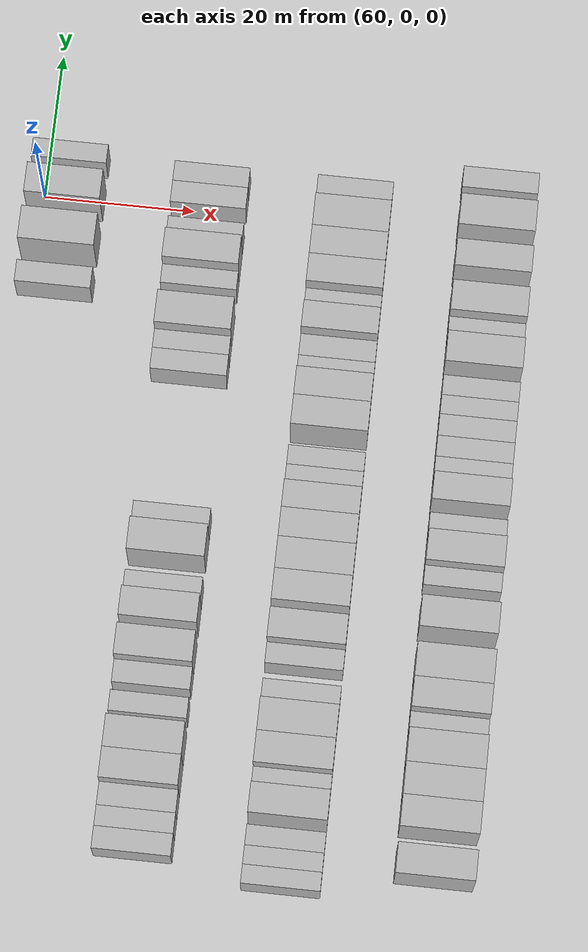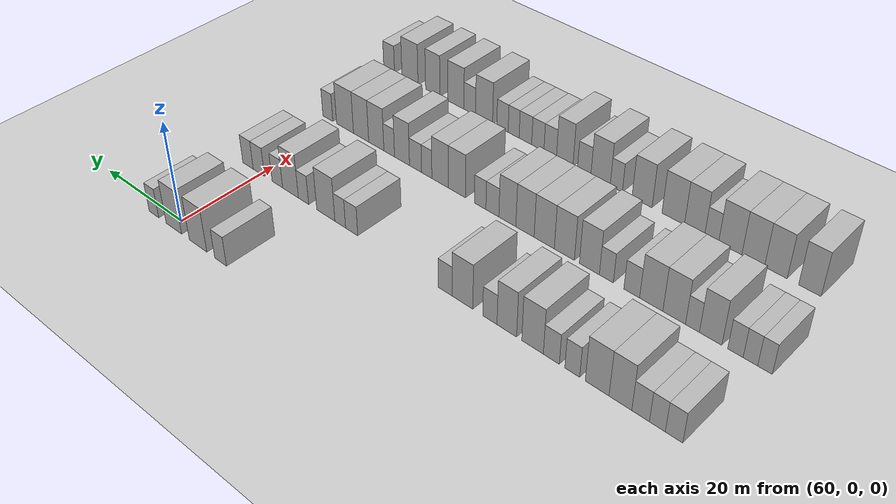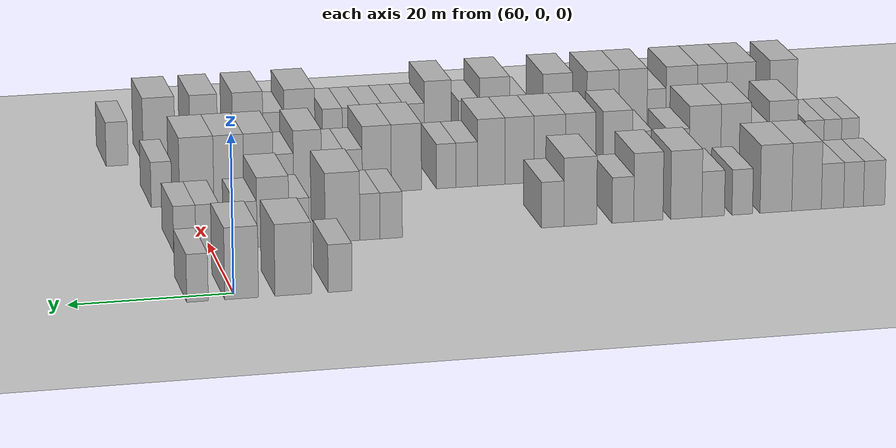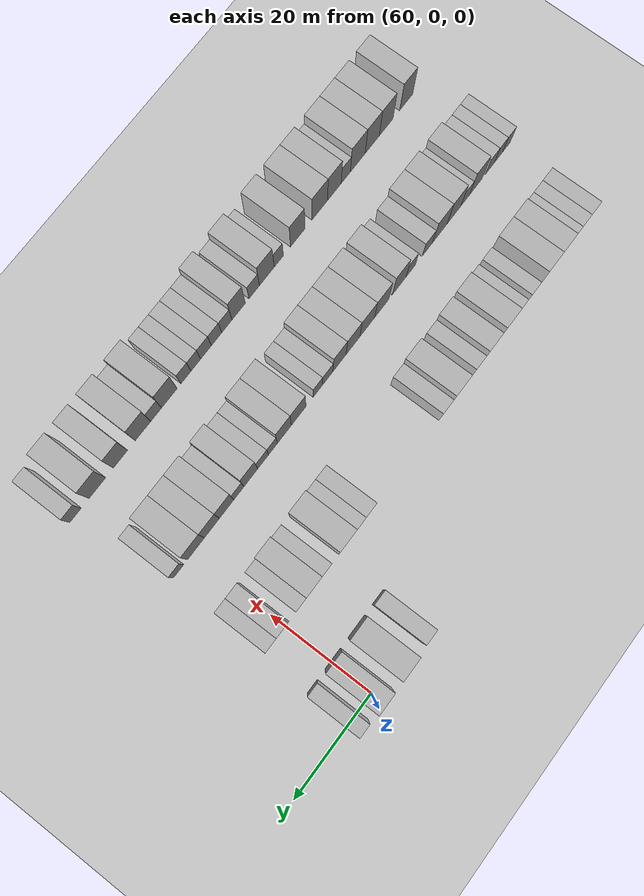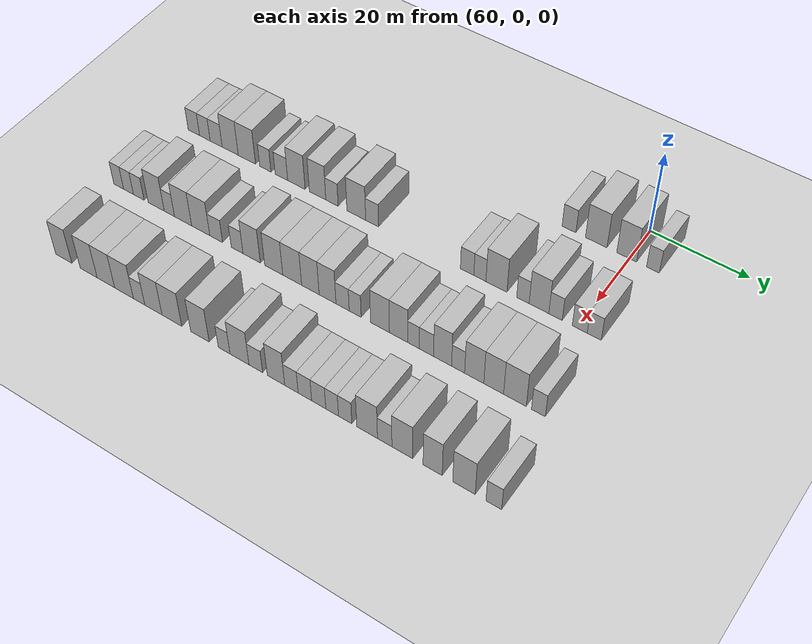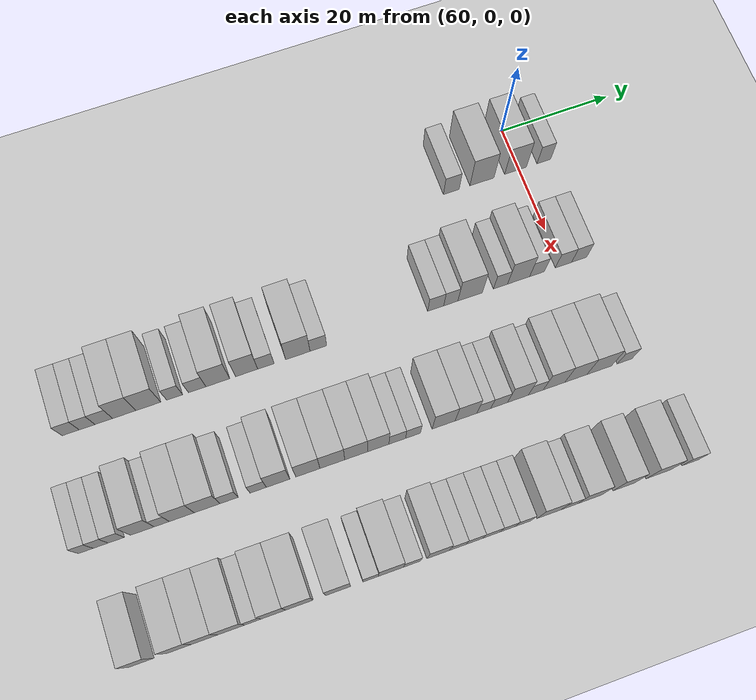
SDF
<sdf version="1.6">
 <world name="default">
  <include>
   <name>ground_plane_2</name>
   <uri>model://HANNAS_ground_plane</uri>
   <pose>100 0 0  0 0 0</pose>
  </include>
  <model name="building_427">
   <static>1</static>
   <pose>63.0000 -12.6085 0 0.000000 0.000000 0.000000</pose>
   <link name="link">
    <pose>0 0 3.00 0 0 0</pose>
    <collision name="collision"><geometry><box><size>10.0000 2.9175 6.0000</size></box></geometry></collision>
    <visual name="visual">
     <cast_shadows>0</cast_shadows>
     <geometry><box><size>10.0000 2.9175 6.0000</size></box></geometry>
     <material>
      <script>
       <uri>model://HANNAS_wall/materials/scripts</uri>
       <uri>model://HANNAS_wall/materials/textures</uri>
       <name>vrc/HANNAS_wall</name>
      </script>
     </material>
    </visual>
   </link>
  </model>
  <model name="building_428">
   <static>1</static>
   <pose>63.0000 -6.9125 0 0.000000 0.000000 0.000000</pose>
   <link name="link">
    <pose>0 0 4.50 0 0 0</pose>
    <collision name="collision"><geometry><box><size>10.0000 4.4746 9.0000</size></box></geometry></collision>
    <visual name="visual">
     <cast_shadows>0</cast_shadows>
     <geometry><box><size>10.0000 4.4746 9.0000</size></box></geometry>
     <material>
      <script>
       <uri>model://HANNAS_wall/materials/scripts</uri>
       <uri>model://HANNAS_wall/materials/textures</uri>
       <name>vrc/HANNAS_wall</name>
      </script>
     </material>
    </visual>
   </link>
  </model>
  <model name="building_429">
   <static>1</static>
   <pose>63.0000 -0.6356 0 0.000000 0.000000 0.000000</pose>
   <link name="link">
    <pose>0 0 4.50 0 0 0</pose>
    <collision name="collision"><geometry><box><size>10.0000 4.0791 9.0000</size></box></geometry></collision>
    <visual name="visual">
     <cast_shadows>0</cast_shadows>
     <geometry><box><size>10.0000 4.0791 9.0000</size></box></geometry>
     <material>
      <script>
       <uri>model://HANNAS_wall/materials/scripts</uri>
       <uri>model://HANNAS_wall/materials/textures</uri>
       <name>vrc/HANNAS_wall</name>
      </script>
     </material>
    </visual>
   </link>
  </model>
  <model name="building_430">
   <static>1</static>
   <pose>63.0000 4.6970 0 0.000000 0.000000 0.000000</pose>
   <link name="link">
    <pose>0 0 3.00 0 0 0</pose>
    <collision name="collision"><geometry><box><size>10.0000 2.5862 6.0000</size></box></geometry></collision>
    <visual name="visual">
     <cast_shadows>0</cast_shadows>
     <geometry><box><size>10.0000 2.5862 6.0000</size></box></geometry>
     <material>
      <script>
       <uri>model://HANNAS_wall/materials/scripts</uri>
       <uri>model://HANNAS_wall/materials/textures</uri>
       <name>vrc/HANNAS_wall</name>
      </script>
     </material>
    </visual>
   </link>
  </model>
  <model name="building_590">
   <static>1</static>
   <pose>82.0000 -85.6109 0 0.000000 0.000000 0.000000</pose>
   <link name="link">
    <pose>0 0 3.00 0 0 0</pose>
    <collision name="collision"><geometry><box><size>10.0000 2.8524 6.0000</size></box></geometry></collision>
    <visual name="visual">
     <cast_shadows>0</cast_shadows>
     <geometry><box><size>10.0000 2.8524 6.0000</size></box></geometry>
     <material>
      <script>
       <uri>model://HANNAS_wall/materials/scripts</uri>
       <uri>model://HANNAS_wall/materials/textures</uri>
       <name>vrc/HANNAS_wall</name>
      </script>
     </material>
    </visual>
   </link>
  </model>
  <model name="building_591">
   <static>1</static>
   <pose>82.0000 -82.8670 0 0.000000 0.000000 0.000000</pose>
   <link name="link">
    <pose>0 0 3.00 0 0 0</pose>
    <collision name="collision"><geometry><box><size>10.0000 2.6353 6.0000</size></box></geometry></collision>
    <visual name="visual">
     <cast_shadows>0</cast_shadows>
     <geometry><box><size>10.0000 2.6353 6.0000</size></box></geometry>
     <material>
      <script>
       <uri>model://HANNAS_wall/materials/scripts</uri>
       <uri>model://HANNAS_wall/materials/textures</uri>
       <name>vrc/HANNAS_wall</name>
      </script>
     </material>
    </visual>
   </link>
  </model>
  <model name="building_592">
   <static>1</static>
   <pose>82.0000 -80.0675 0 0.000000 0.000000 0.000000</pose>
   <link name="link">
    <pose>0 0 3.00 0 0 0</pose>
    <collision name="collision"><geometry><box><size>10.0000 2.9636 6.0000</size></box></geometry></collision>
    <visual name="visual">
     <cast_shadows>0</cast_shadows>
     <geometry><box><size>10.0000 2.9636 6.0000</size></box></geometry>
     <material>
      <script>
       <uri>model://HANNAS_wall/materials/scripts</uri>
       <uri>model://HANNAS_wall/materials/textures</uri>
       <name>vrc/HANNAS_wall</name>
      </script>
     </material>
    </visual>
   </link>
  </model>
  <model name="building_593">
   <static>1</static>
   <pose>82.0000 -76.6243 0 0.000000 0.000000 0.000000</pose>
   <link name="link">
    <pose>0 0 4.50 0 0 0</pose>
    <collision name="collision"><geometry><box><size>10.0000 3.9227 9.0000</size></box></geometry></collision>
    <visual name="visual">
     <cast_shadows>0</cast_shadows>
     <geometry><box><size>10.0000 3.9227 9.0000</size></box></geometry>
     <material>
      <script>
       <uri>model://HANNAS_wall/materials/scripts</uri>
       <uri>model://HANNAS_wall/materials/textures</uri>
       <name>vrc/HANNAS_wall</name>
      </script>
     </material>
    </visual>
   </link>
  </model>
  <model name="building_594">
   <static>1</static>
   <pose>82.0000 -72.5664 0 0.000000 0.000000 0.000000</pose>
   <link name="link">
    <pose>0 0 4.50 0 0 0</pose>
    <collision name="collision"><geometry><box><size>10.0000 4.1932 9.0000</size></box></geometry></collision>
    <visual name="visual">
     <cast_shadows>0</cast_shadows>
     <geometry><box><size>10.0000 4.1932 9.0000</size></box></geometry>
     <material>
      <script>
       <uri>model://HANNAS_wall/materials/scripts</uri>
       <uri>model://HANNAS_wall/materials/textures</uri>
       <name>vrc/HANNAS_wall</name>
      </script>
     </material>
    </visual>
   </link>
  </model>
  <model name="building_595">
   <static>1</static>
   <pose>82.0000 -68.1193 0 0.000000 0.000000 0.000000</pose>
   <link name="link">
    <pose>0 0 3.00 0 0 0</pose>
    <collision name="collision"><geometry><box><size>10.0000 2.7010 6.0000</size></box></geometry></collision>
    <visual name="visual">
     <cast_shadows>0</cast_shadows>
     <geometry><box><size>10.0000 2.7010 6.0000</size></box></geometry>
     <material>
      <script>
       <uri>model://HANNAS_wall/materials/scripts</uri>
       <uri>model://HANNAS_wall/materials/textures</uri>
       <name>vrc/HANNAS_wall</name>
      </script>
     </material>
    </visual>
   </link>
  </model>
  <model name="building_596">
   <static>1</static>
   <pose>82.0000 -64.2862 0 0.000000 0.000000 0.000000</pose>
   <link name="link">
    <pose>0 0 3.00 0 0 0</pose>
    <collision name="collision"><geometry><box><size>10.0000 2.9650 6.0000</size></box></geometry></collision>
    <visual name="visual">
     <cast_shadows>0</cast_shadows>
     <geometry><box><size>10.0000 2.9650 6.0000</size></box></geometry>
     <material>
      <script>
       <uri>model://HANNAS_wall/materials/scripts</uri>
       <uri>model://HANNAS_wall/materials/textures</uri>
       <name>vrc/HANNAS_wall</name>
      </script>
     </material>
    </visual>
   </link>
  </model>
  <model name="building_597">
   <static>1</static>
   <pose>82.0000 -60.7587 0 0.000000 0.000000 0.000000</pose>
   <link name="link">
    <pose>0 0 4.50 0 0 0</pose>
    <collision name="collision"><geometry><box><size>10.0000 4.0901 9.0000</size></box></geometry></collision>
    <visual name="visual">
     <cast_shadows>0</cast_shadows>
     <geometry><box><size>10.0000 4.0901 9.0000</size></box></geometry>
     <material>
      <script>
       <uri>model://HANNAS_wall/materials/scripts</uri>
       <uri>model://HANNAS_wall/materials/textures</uri>
       <name>vrc/HANNAS_wall</name>
      </script>
     </material>
    </visual>
   </link>
  </model>
  <model name="building_598">
   <static>1</static>
   <pose>82.0000 -55.8062 0 0.000000 0.000000 0.000000</pose>
   <link name="link">
    <pose>0 0 4.50 0 0 0</pose>
    <collision name="collision"><geometry><box><size>10.0000 3.8148 9.0000</size></box></geometry></collision>
    <visual name="visual">
     <cast_shadows>0</cast_shadows>
     <geometry><box><size>10.0000 3.8148 9.0000</size></box></geometry>
     <material>
      <script>
       <uri>model://HANNAS_wall/materials/scripts</uri>
       <uri>model://HANNAS_wall/materials/textures</uri>
       <name>vrc/HANNAS_wall</name>
      </script>
     </material>
    </visual>
   </link>
  </model>
  <model name="building_599">
   <static>1</static>
   <pose>82.0000 -52.4853 0 0.000000 0.000000 0.000000</pose>
   <link name="link">
    <pose>0 0 3.00 0 0 0</pose>
    <collision name="collision"><geometry><box><size>10.0000 2.8270 6.0000</size></box></geometry></collision>
    <visual name="visual">
     <cast_shadows>0</cast_shadows>
     <geometry><box><size>10.0000 2.8270 6.0000</size></box></geometry>
     <material>
      <script>
       <uri>model://HANNAS_wall/materials/scripts</uri>
       <uri>model://HANNAS_wall/materials/textures</uri>
       <name>vrc/HANNAS_wall</name>
      </script>
     </material>
    </visual>
   </link>
  </model>
  <model name="building_600">
   <static>1</static>
   <pose>82.0000 -46.9468 0 0.000000 0.000000 0.000000</pose>
   <link name="link">
    <pose>0 0 4.50 0 0 0</pose>
    <collision name="collision"><geometry><box><size>10.0000 4.2500 9.0000</size></box></geometry></collision>
    <visual name="visual">
     <cast_shadows>0</cast_shadows>
     <geometry><box><size>10.0000 4.2500 9.0000</size></box></geometry>
     <material>
      <script>
       <uri>model://HANNAS_wall/materials/scripts</uri>
       <uri>model://HANNAS_wall/materials/textures</uri>
       <name>vrc/HANNAS_wall</name>
      </script>
     </material>
    </visual>
   </link>
  </model>
  <model name="building_601">
   <static>1</static>
   <pose>82.0000 -43.3713 0 0.000000 0.000000 0.000000</pose>
   <link name="link">
    <pose>0 0 3.00 0 0 0</pose>
    <collision name="collision"><geometry><box><size>10.0000 2.9010 6.0000</size></box></geometry></collision>
    <visual name="visual">
     <cast_shadows>0</cast_shadows>
     <geometry><box><size>10.0000 2.9010 6.0000</size></box></geometry>
     <material>
      <script>
       <uri>model://HANNAS_wall/materials/scripts</uri>
       <uri>model://HANNAS_wall/materials/textures</uri>
       <name>vrc/HANNAS_wall</name>
      </script>
     </material>
    </visual>
   </link>
  </model>
  <model name="building_602">
   <static>1</static>
   <pose>82.0000 -22.6503 0 0.000000 0.000000 0.000000</pose>
   <link name="link">
    <pose>0 0 3.00 0 0 0</pose>
    <collision name="collision"><geometry><box><size>10.0000 2.8470 6.0000</size></box></geometry></collision>
    <visual name="visual">
     <cast_shadows>0</cast_shadows>
     <geometry><box><size>10.0000 2.8470 6.0000</size></box></geometry>
     <material>
      <script>
       <uri>model://HANNAS_wall/materials/scripts</uri>
       <uri>model://HANNAS_wall/materials/textures</uri>
       <name>vrc/HANNAS_wall</name>
      </script>
     </material>
    </visual>
   </link>
  </model>
  <model name="building_603">
   <static>1</static>
   <pose>82.0000 -19.9521 0 0.000000 0.000000 0.000000</pose>
   <link name="link">
    <pose>0 0 3.00 0 0 0</pose>
    <collision name="collision"><geometry><box><size>10.0000 2.5494 6.0000</size></box></geometry></collision>
    <visual name="visual">
     <cast_shadows>0</cast_shadows>
     <geometry><box><size>10.0000 2.5494 6.0000</size></box></geometry>
     <material>
      <script>
       <uri>model://HANNAS_wall/materials/scripts</uri>
       <uri>model://HANNAS_wall/materials/textures</uri>
       <name>vrc/HANNAS_wall</name>
      </script>
     </material>
    </visual>
   </link>
  </model>
  <model name="building_604">
   <static>1</static>
   <pose>82.0000 -16.4802 0 0.000000 0.000000 0.000000</pose>
   <link name="link">
    <pose>0 0 4.50 0 0 0</pose>
    <collision name="collision"><geometry><box><size>10.0000 4.3944 9.0000</size></box></geometry></collision>
    <visual name="visual">
     <cast_shadows>0</cast_shadows>
     <geometry><box><size>10.0000 4.3944 9.0000</size></box></geometry>
     <material>
      <script>
       <uri>model://HANNAS_wall/materials/scripts</uri>
       <uri>model://HANNAS_wall/materials/textures</uri>
       <name>vrc/HANNAS_wall</name>
      </script>
     </material>
    </visual>
   </link>
  </model>
  <model name="building_605">
   <static>1</static>
   <pose>82.0000 -11.0034 0 0.000000 0.000000 0.000000</pose>
   <link name="link">
    <pose>0 0 3.00 0 0 0</pose>
    <collision name="collision"><geometry><box><size>10.0000 2.5592 6.0000</size></box></geometry></collision>
    <visual name="visual">
     <cast_shadows>0</cast_shadows>
     <geometry><box><size>10.0000 2.5592 6.0000</size></box></geometry>
     <material>
      <script>
       <uri>model://HANNAS_wall/materials/scripts</uri>
       <uri>model://HANNAS_wall/materials/textures</uri>
       <name>vrc/HANNAS_wall</name>
      </script>
     </material>
    </visual>
   </link>
  </model>
  <model name="building_606">
   <static>1</static>
   <pose>82.0000 -7.7176 0 0.000000 0.000000 0.000000</pose>
   <link name="link">
    <pose>0 0 4.50 0 0 0</pose>
    <collision name="collision"><geometry><box><size>10.0000 4.0124 9.0000</size></box></geometry></collision>
    <visual name="visual">
     <cast_shadows>0</cast_shadows>
     <geometry><box><size>10.0000 4.0124 9.0000</size></box></geometry>
     <material>
      <script>
       <uri>model://HANNAS_wall/materials/scripts</uri>
       <uri>model://HANNAS_wall/materials/textures</uri>
       <name>vrc/HANNAS_wall</name>
      </script>
     </material>
    </visual>
   </link>
  </model>
  <model name="building_607">
   <static>1</static>
   <pose>82.0000 -4.3612 0 0.000000 0.000000 0.000000</pose>
   <link name="link">
    <pose>0 0 3.00 0 0 0</pose>
    <collision name="collision"><geometry><box><size>10.0000 2.7005 6.0000</size></box></geometry></collision>
    <visual name="visual">
     <cast_shadows>0</cast_shadows>
     <geometry><box><size>10.0000 2.7005 6.0000</size></box></geometry>
     <material>
      <script>
       <uri>model://HANNAS_wall/materials/scripts</uri>
       <uri>model://HANNAS_wall/materials/textures</uri>
       <name>vrc/HANNAS_wall</name>
      </script>
     </material>
    </visual>
   </link>
  </model>
  <model name="building_608">
   <static>1</static>
   <pose>82.0000 0.4770 0 0.000000 0.000000 0.000000</pose>
   <link name="link">
    <pose>0 0 3.00 0 0 0</pose>
    <collision name="collision"><geometry><box><size>10.0000 2.9759 6.0000</size></box></geometry></collision>
    <visual name="visual">
     <cast_shadows>0</cast_shadows>
     <geometry><box><size>10.0000 2.9759 6.0000</size></box></geometry>
     <material>
      <script>
       <uri>model://HANNAS_wall/materials/scripts</uri>
       <uri>model://HANNAS_wall/materials/textures</uri>
       <name>vrc/HANNAS_wall</name>
      </script>
     </material>
    </visual>
   </link>
  </model>
  <model name="building_609">
   <static>1</static>
   <pose>82.0000 3.3481 0 0.000000 0.000000 0.000000</pose>
   <link name="link">
    <pose>0 0 3.00 0 0 0</pose>
    <collision name="collision"><geometry><box><size>10.0000 2.7662 6.0000</size></box></geometry></collision>
    <visual name="visual">
     <cast_shadows>0</cast_shadows>
     <geometry><box><size>10.0000 2.7662 6.0000</size></box></geometry>
     <material>
      <script>
       <uri>model://HANNAS_wall/materials/scripts</uri>
       <uri>model://HANNAS_wall/materials/textures</uri>
       <name>vrc/HANNAS_wall</name>
      </script>
     </material>
    </visual>
   </link>
  </model>
  <model name="building_761">
   <static>1</static>
   <pose>101.0000 -88.2274 0 0.000000 0.000000 0.000000</pose>
   <link name="link">
    <pose>0 0 3.00 0 0 0</pose>
    <collision name="collision"><geometry><box><size>10.0000 2.4112 6.0000</size></box></geometry></collision>
    <visual name="visual">
     <cast_shadows>0</cast_shadows>
     <geometry><box><size>10.0000 2.4112 6.0000</size></box></geometry>
     <material>
      <script>
       <uri>model://HANNAS_wall/materials/scripts</uri>
       <uri>model://HANNAS_wall/materials/textures</uri>
       <name>vrc/HANNAS_wall</name>
      </script>
     </material>
    </visual>
   </link>
  </model>
  <model name="building_762">
   <static>1</static>
   <pose>101.0000 -85.8109 0 0.000000 0.000000 0.000000</pose>
   <link name="link">
    <pose>0 0 3.00 0 0 0</pose>
    <collision name="collision"><geometry><box><size>10.0000 2.4219 6.0000</size></box></geometry></collision>
    <visual name="visual">
     <cast_shadows>0</cast_shadows>
     <geometry><box><size>10.0000 2.4219 6.0000</size></box></geometry>
     <material>
      <script>
       <uri>model://HANNAS_wall/materials/scripts</uri>
       <uri>model://HANNAS_wall/materials/textures</uri>
       <name>vrc/HANNAS_wall</name>
      </script>
     </material>
    </visual>
   </link>
  </model>
  <model name="building_763">
   <static>1</static>
   <pose>101.0000 -83.2927 0 0.000000 0.000000 0.000000</pose>
   <link name="link">
    <pose>0 0 3.00 0 0 0</pose>
    <collision name="collision"><geometry><box><size>10.0000 2.6145 6.0000</size></box></geometry></collision>
    <visual name="visual">
     <cast_shadows>0</cast_shadows>
     <geometry><box><size>10.0000 2.6145 6.0000</size></box></geometry>
     <material>
      <script>
       <uri>model://HANNAS_wall/materials/scripts</uri>
       <uri>model://HANNAS_wall/materials/textures</uri>
       <name>vrc/HANNAS_wall</name>
      </script>
     </material>
    </visual>
   </link>
  </model>
  <model name="building_764">
   <static>1</static>
   <pose>101.0000 -79.0348 0 0.000000 0.000000 0.000000</pose>
   <link name="link">
    <pose>0 0 4.50 0 0 0</pose>
    <collision name="collision"><geometry><box><size>10.0000 3.9013 9.0000</size></box></geometry></collision>
    <visual name="visual">
     <cast_shadows>0</cast_shadows>
     <geometry><box><size>10.0000 3.9013 9.0000</size></box></geometry>
     <material>
      <script>
       <uri>model://HANNAS_wall/materials/scripts</uri>
       <uri>model://HANNAS_wall/materials/textures</uri>
       <name>vrc/HANNAS_wall</name>
      </script>
     </material>
    </visual>
   </link>
  </model>
  <model name="building_765">
   <static>1</static>
   <pose>101.0000 -75.8535 0 0.000000 0.000000 0.000000</pose>
   <link name="link">
    <pose>0 0 3.00 0 0 0</pose>
    <collision name="collision"><geometry><box><size>10.0000 2.4613 6.0000</size></box></geometry></collision>
    <visual name="visual">
     <cast_shadows>0</cast_shadows>
     <geometry><box><size>10.0000 2.4613 6.0000</size></box></geometry>
     <material>
      <script>
       <uri>model://HANNAS_wall/materials/scripts</uri>
       <uri>model://HANNAS_wall/materials/textures</uri>
       <name>vrc/HANNAS_wall</name>
      </script>
     </material>
    </visual>
   </link>
  </model>
  <model name="building_766">
   <static>1</static>
   <pose>101.0000 -72.5811 0 0.000000 0.000000 0.000000</pose>
   <link name="link">
    <pose>0 0 4.50 0 0 0</pose>
    <collision name="collision"><geometry><box><size>10.0000 4.0834 9.0000</size></box></geometry></collision>
    <visual name="visual">
     <cast_shadows>0</cast_shadows>
     <geometry><box><size>10.0000 4.0834 9.0000</size></box></geometry>
     <material>
      <script>
       <uri>model://HANNAS_wall/materials/scripts</uri>
       <uri>model://HANNAS_wall/materials/textures</uri>
       <name>vrc/HANNAS_wall</name>
      </script>
     </material>
    </visual>
   </link>
  </model>
  <model name="building_767">
   <static>1</static>
   <pose>101.0000 -68.3963 0 0.000000 0.000000 0.000000</pose>
   <link name="link">
    <pose>0 0 4.50 0 0 0</pose>
    <collision name="collision"><geometry><box><size>10.0000 4.2862 9.0000</size></box></geometry></collision>
    <visual name="visual">
     <cast_shadows>0</cast_shadows>
     <geometry><box><size>10.0000 4.2862 9.0000</size></box></geometry>
     <material>
      <script>
       <uri>model://HANNAS_wall/materials/scripts</uri>
       <uri>model://HANNAS_wall/materials/textures</uri>
       <name>vrc/HANNAS_wall</name>
      </script>
     </material>
    </visual>
   </link>
  </model>
  <model name="building_768">
   <static>1</static>
   <pose>101.0000 -64.7652 0 0.000000 0.000000 0.000000</pose>
   <link name="link">
    <pose>0 0 3.00 0 0 0</pose>
    <collision name="collision"><geometry><box><size>10.0000 2.9760 6.0000</size></box></geometry></collision>
    <visual name="visual">
     <cast_shadows>0</cast_shadows>
     <geometry><box><size>10.0000 2.9760 6.0000</size></box></geometry>
     <material>
      <script>
       <uri>model://HANNAS_wall/materials/scripts</uri>
       <uri>model://HANNAS_wall/materials/textures</uri>
       <name>vrc/HANNAS_wall</name>
      </script>
     </material>
    </visual>
   </link>
  </model>
  <model name="building_769">
   <static>1</static>
   <pose>101.0000 -59.9207 0 0.000000 0.000000 0.000000</pose>
   <link name="link">
    <pose>0 0 3.00 0 0 0</pose>
    <collision name="collision"><geometry><box><size>10.0000 2.7131 6.0000</size></box></geometry></collision>
    <visual name="visual">
     <cast_shadows>0</cast_shadows>
     <geometry><box><size>10.0000 2.7131 6.0000</size></box></geometry>
     <material>
      <script>
       <uri>model://HANNAS_wall/materials/scripts</uri>
       <uri>model://HANNAS_wall/materials/textures</uri>
       <name>vrc/HANNAS_wall</name>
      </script>
     </material>
    </visual>
   </link>
  </model>
  <model name="building_770">
   <static>1</static>
   <pose>101.0000 -56.5944 0 0.000000 0.000000 0.000000</pose>
   <link name="link">
    <pose>0 0 4.50 0 0 0</pose>
    <collision name="collision"><geometry><box><size>10.0000 3.9394 9.0000</size></box></geometry></collision>
    <visual name="visual">
     <cast_shadows>0</cast_shadows>
     <geometry><box><size>10.0000 3.9394 9.0000</size></box></geometry>
     <material>
      <script>
       <uri>model://HANNAS_wall/materials/scripts</uri>
       <uri>model://HANNAS_wall/materials/textures</uri>
       <name>vrc/HANNAS_wall</name>
      </script>
     </material>
    </visual>
   </link>
  </model>
  <model name="building_771">
   <static>1</static>
   <pose>101.0000 -51.5939 0 0.000000 0.000000 0.000000</pose>
   <link name="link">
    <pose>0 0 4.50 0 0 0</pose>
    <collision name="collision"><geometry><box><size>10.0000 4.0616 9.0000</size></box></geometry></collision>
    <visual name="visual">
     <cast_shadows>0</cast_shadows>
     <geometry><box><size>10.0000 4.0616 9.0000</size></box></geometry>
     <material>
      <script>
       <uri>model://HANNAS_wall/materials/scripts</uri>
       <uri>model://HANNAS_wall/materials/textures</uri>
       <name>vrc/HANNAS_wall</name>
      </script>
     </material>
    </visual>
   </link>
  </model>
  <model name="building_772">
   <static>1</static>
   <pose>101.0000 -47.4658 0 0.000000 0.000000 0.000000</pose>
   <link name="link">
    <pose>0 0 4.50 0 0 0</pose>
    <collision name="collision"><geometry><box><size>10.0000 4.1945 9.0000</size></box></geometry></collision>
    <visual name="visual">
     <cast_shadows>0</cast_shadows>
     <geometry><box><size>10.0000 4.1945 9.0000</size></box></geometry>
     <material>
      <script>
       <uri>model://HANNAS_wall/materials/scripts</uri>
       <uri>model://HANNAS_wall/materials/textures</uri>
       <name>vrc/HANNAS_wall</name>
      </script>
     </material>
    </visual>
   </link>
  </model>
  <model name="building_773">
   <static>1</static>
   <pose>101.0000 -43.4402 0 0.000000 0.000000 0.000000</pose>
   <link name="link">
    <pose>0 0 4.50 0 0 0</pose>
    <collision name="collision"><geometry><box><size>10.0000 3.8567 9.0000</size></box></geometry></collision>
    <visual name="visual">
     <cast_shadows>0</cast_shadows>
     <geometry><box><size>10.0000 3.8567 9.0000</size></box></geometry>
     <material>
      <script>
       <uri>model://HANNAS_wall/materials/scripts</uri>
       <uri>model://HANNAS_wall/materials/textures</uri>
       <name>vrc/HANNAS_wall</name>
      </script>
     </material>
    </visual>
   </link>
  </model>
  <model name="building_774">
   <static>1</static>
   <pose>101.0000 -39.6817 0 0.000000 0.000000 0.000000</pose>
   <link name="link">
    <pose>0 0 4.50 0 0 0</pose>
    <collision name="collision"><geometry><box><size>10.0000 3.6603 9.0000</size></box></geometry></collision>
    <visual name="visual">
     <cast_shadows>0</cast_shadows>
     <geometry><box><size>10.0000 3.6603 9.0000</size></box></geometry>
     <material>
      <script>
       <uri>model://HANNAS_wall/materials/scripts</uri>
       <uri>model://HANNAS_wall/materials/textures</uri>
       <name>vrc/HANNAS_wall</name>
      </script>
     </material>
    </visual>
   </link>
  </model>
  <model name="building_775">
   <static>1</static>
   <pose>101.0000 -36.4276 0 0.000000 0.000000 0.000000</pose>
   <link name="link">
    <pose>0 0 3.00 0 0 0</pose>
    <collision name="collision"><geometry><box><size>10.0000 2.8479 6.0000</size></box></geometry></collision>
    <visual name="visual">
     <cast_shadows>0</cast_shadows>
     <geometry><box><size>10.0000 2.8479 6.0000</size></box></geometry>
     <material>
      <script>
       <uri>model://HANNAS_wall/materials/scripts</uri>
       <uri>model://HANNAS_wall/materials/textures</uri>
       <name>vrc/HANNAS_wall</name>
      </script>
     </material>
    </visual>
   </link>
  </model>
  <model name="building_776">
   <static>1</static>
   <pose>101.0000 -33.7179 0 0.000000 0.000000 0.000000</pose>
   <link name="link">
    <pose>0 0 3.00 0 0 0</pose>
    <collision name="collision"><geometry><box><size>10.0000 2.5715 6.0000</size></box></geometry></collision>
    <visual name="visual">
     <cast_shadows>0</cast_shadows>
     <geometry><box><size>10.0000 2.5715 6.0000</size></box></geometry>
     <material>
      <script>
       <uri>model://HANNAS_wall/materials/scripts</uri>
       <uri>model://HANNAS_wall/materials/textures</uri>
       <name>vrc/HANNAS_wall</name>
      </script>
     </material>
    </visual>
   </link>
  </model>
  <model name="building_777">
   <static>1</static>
   <pose>101.0000 -28.4471 0 0.000000 0.000000 0.000000</pose>
   <link name="link">
    <pose>0 0 4.50 0 0 0</pose>
    <collision name="collision"><geometry><box><size>10.0000 3.9701 9.0000</size></box></geometry></collision>
    <visual name="visual">
     <cast_shadows>0</cast_shadows>
     <geometry><box><size>10.0000 3.9701 9.0000</size></box></geometry>
     <material>
      <script>
       <uri>model://HANNAS_wall/materials/scripts</uri>
       <uri>model://HANNAS_wall/materials/textures</uri>
       <name>vrc/HANNAS_wall</name>
      </script>
     </material>
    </visual>
   </link>
  </model>
  <model name="building_778">
   <static>1</static>
   <pose>101.0000 -24.5600 0 0.000000 0.000000 0.000000</pose>
   <link name="link">
    <pose>0 0 4.50 0 0 0</pose>
    <collision name="collision"><geometry><box><size>10.0000 3.8041 9.0000</size></box></geometry></collision>
    <visual name="visual">
     <cast_shadows>0</cast_shadows>
     <geometry><box><size>10.0000 3.8041 9.0000</size></box></geometry>
     <material>
      <script>
       <uri>model://HANNAS_wall/materials/scripts</uri>
       <uri>model://HANNAS_wall/materials/textures</uri>
       <name>vrc/HANNAS_wall</name>
      </script>
     </material>
    </visual>
   </link>
  </model>
  <model name="building_779">
   <static>1</static>
   <pose>101.0000 -21.4479 0 0.000000 0.000000 0.000000</pose>
   <link name="link">
    <pose>0 0 3.00 0 0 0</pose>
    <collision name="collision"><geometry><box><size>10.0000 2.4201 6.0000</size></box></geometry></collision>
    <visual name="visual">
     <cast_shadows>0</cast_shadows>
     <geometry><box><size>10.0000 2.4201 6.0000</size></box></geometry>
     <material>
      <script>
       <uri>model://HANNAS_wall/materials/scripts</uri>
       <uri>model://HANNAS_wall/materials/textures</uri>
       <name>vrc/HANNAS_wall</name>
      </script>
     </material>
    </visual>
   </link>
  </model>
  <model name="building_780">
   <static>1</static>
   <pose>101.0000 -18.7777 0 0.000000 0.000000 0.000000</pose>
   <link name="link">
    <pose>0 0 3.00 0 0 0</pose>
    <collision name="collision"><geometry><box><size>10.0000 2.9202 6.0000</size></box></geometry></collision>
    <visual name="visual">
     <cast_shadows>0</cast_shadows>
     <geometry><box><size>10.0000 2.9202 6.0000</size></box></geometry>
     <material>
      <script>
       <uri>model://HANNAS_wall/materials/scripts</uri>
       <uri>model://HANNAS_wall/materials/textures</uri>
       <name>vrc/HANNAS_wall</name>
      </script>
     </material>
    </visual>
   </link>
  </model>
  <model name="building_781">
   <static>1</static>
   <pose>101.0000 -15.4907 0 0.000000 0.000000 0.000000</pose>
   <link name="link">
    <pose>0 0 4.50 0 0 0</pose>
    <collision name="collision"><geometry><box><size>10.0000 3.6539 9.0000</size></box></geometry></collision>
    <visual name="visual">
     <cast_shadows>0</cast_shadows>
     <geometry><box><size>10.0000 3.6539 9.0000</size></box></geometry>
     <material>
      <script>
       <uri>model://HANNAS_wall/materials/scripts</uri>
       <uri>model://HANNAS_wall/materials/textures</uri>
       <name>vrc/HANNAS_wall</name>
      </script>
     </material>
    </visual>
   </link>
  </model>
  <model name="building_782">
   <static>1</static>
   <pose>101.0000 -12.3449 0 0.000000 0.000000 0.000000</pose>
   <link name="link">
    <pose>0 0 3.00 0 0 0</pose>
    <collision name="collision"><geometry><box><size>10.0000 2.6376 6.0000</size></box></geometry></collision>
    <visual name="visual">
     <cast_shadows>0</cast_shadows>
     <geometry><box><size>10.0000 2.6376 6.0000</size></box></geometry>
     <material>
      <script>
       <uri>model://HANNAS_wall/materials/scripts</uri>
       <uri>model://HANNAS_wall/materials/textures</uri>
       <name>vrc/HANNAS_wall</name>
      </script>
     </material>
    </visual>
   </link>
  </model>
  <model name="building_783">
   <static>1</static>
   <pose>101.0000 -9.1117 0 0.000000 0.000000 0.000000</pose>
   <link name="link">
    <pose>0 0 4.50 0 0 0</pose>
    <collision name="collision"><geometry><box><size>10.0000 3.8289 9.0000</size></box></geometry></collision>
    <visual name="visual">
     <cast_shadows>0</cast_shadows>
     <geometry><box><size>10.0000 3.8289 9.0000</size></box></geometry>
     <material>
      <script>
       <uri>model://HANNAS_wall/materials/scripts</uri>
       <uri>model://HANNAS_wall/materials/textures</uri>
       <name>vrc/HANNAS_wall</name>
      </script>
     </material>
    </visual>
   </link>
  </model>
  <model name="building_784">
   <static>1</static>
   <pose>101.0000 -5.2465 0 0.000000 0.000000 0.000000</pose>
   <link name="link">
    <pose>0 0 4.50 0 0 0</pose>
    <collision name="collision"><geometry><box><size>10.0000 3.9015 9.0000</size></box></geometry></collision>
    <visual name="visual">
     <cast_shadows>0</cast_shadows>
     <geometry><box><size>10.0000 3.9015 9.0000</size></box></geometry>
     <material>
      <script>
       <uri>model://HANNAS_wall/materials/scripts</uri>
       <uri>model://HANNAS_wall/materials/textures</uri>
       <name>vrc/HANNAS_wall</name>
      </script>
     </material>
    </visual>
   </link>
  </model>
  <model name="building_785">
   <static>1</static>
   <pose>101.0000 -1.0834 0 0.000000 0.000000 0.000000</pose>
   <link name="link">
    <pose>0 0 4.50 0 0 0</pose>
    <collision name="collision"><geometry><box><size>10.0000 4.4248 9.0000</size></box></geometry></collision>
    <visual name="visual">
     <cast_shadows>0</cast_shadows>
     <geometry><box><size>10.0000 4.4248 9.0000</size></box></geometry>
     <material>
      <script>
       <uri>model://HANNAS_wall/materials/scripts</uri>
       <uri>model://HANNAS_wall/materials/textures</uri>
       <name>vrc/HANNAS_wall</name>
      </script>
     </material>
    </visual>
   </link>
  </model>
  <model name="building_786">
   <static>1</static>
   <pose>101.0000 3.4607 0 0.000000 0.000000 0.000000</pose>
   <link name="link">
    <pose>0 0 3.00 0 0 0</pose>
    <collision name="collision"><geometry><box><size>10.0000 2.6632 6.0000</size></box></geometry></collision>
    <visual name="visual">
     <cast_shadows>0</cast_shadows>
     <geometry><box><size>10.0000 2.6632 6.0000</size></box></geometry>
     <material>
      <script>
       <uri>model://HANNAS_wall/materials/scripts</uri>
       <uri>model://HANNAS_wall/materials/textures</uri>
       <name>vrc/HANNAS_wall</name>
      </script>
     </material>
    </visual>
   </link>
  </model>
  <model name="building_930">
   <static>1</static>
   <pose>120.0000 -84.6144 0 0.000000 0.000000 0.000000</pose>
   <link name="link">
    <pose>0 0 4.50 0 0 0</pose>
    <collision name="collision"><geometry><box><size>10.0000 3.8898 9.0000</size></box></geometry></collision>
    <visual name="visual">
     <cast_shadows>0</cast_shadows>
     <geometry><box><size>10.0000 3.8898 9.0000</size></box></geometry>
     <material>
      <script>
       <uri>model://HANNAS_wall/materials/scripts</uri>
       <uri>model://HANNAS_wall/materials/textures</uri>
       <name>vrc/HANNAS_wall</name>
      </script>
     </material>
    </visual>
   </link>
  </model>
  <model name="building_931">
   <static>1</static>
   <pose>120.0000 -78.6488 0 0.000000 0.000000 0.000000</pose>
   <link name="link">
    <pose>0 0 4.50 0 0 0</pose>
    <collision name="collision"><geometry><box><size>10.0000 4.0414 9.0000</size></box></geometry></collision>
    <visual name="visual">
     <cast_shadows>0</cast_shadows>
     <geometry><box><size>10.0000 4.0414 9.0000</size></box></geometry>
     <material>
      <script>
       <uri>model://HANNAS_wall/materials/scripts</uri>
       <uri>model://HANNAS_wall/materials/textures</uri>
       <name>vrc/HANNAS_wall</name>
      </script>
     </material>
    </visual>
   </link>
  </model>
  <model name="building_932">
   <static>1</static>
   <pose>120.0000 -74.5584 0 0.000000 0.000000 0.000000</pose>
   <link name="link">
    <pose>0 0 4.50 0 0 0</pose>
    <collision name="collision"><geometry><box><size>10.0000 4.1395 9.0000</size></box></geometry></collision>
    <visual name="visual">
     <cast_shadows>0</cast_shadows>
     <geometry><box><size>10.0000 4.1395 9.0000</size></box></geometry>
     <material>
      <script>
       <uri>model://HANNAS_wall/materials/scripts</uri>
       <uri>model://HANNAS_wall/materials/textures</uri>
       <name>vrc/HANNAS_wall</name>
      </script>
     </material>
    </visual>
   </link>
  </model>
  <model name="building_933">
   <static>1</static>
   <pose>120.0000 -70.3128 0 0.000000 0.000000 0.000000</pose>
   <link name="link">
    <pose>0 0 4.50 0 0 0</pose>
    <collision name="collision"><geometry><box><size>10.0000 4.3517 9.0000</size></box></geometry></collision>
    <visual name="visual">
     <cast_shadows>0</cast_shadows>
     <geometry><box><size>10.0000 4.3517 9.0000</size></box></geometry>
     <material>
      <script>
       <uri>model://HANNAS_wall/materials/scripts</uri>
       <uri>model://HANNAS_wall/materials/textures</uri>
       <name>vrc/HANNAS_wall</name>
      </script>
     </material>
    </visual>
   </link>
  </model>
  <model name="building_934">
   <static>1</static>
   <pose>120.0000 -66.8198 0 0.000000 0.000000 0.000000</pose>
   <link name="link">
    <pose>0 0 3.00 0 0 0</pose>
    <collision name="collision"><geometry><box><size>10.0000 2.6343 6.0000</size></box></geometry></collision>
    <visual name="visual">
     <cast_shadows>0</cast_shadows>
     <geometry><box><size>10.0000 2.6343 6.0000</size></box></geometry>
     <material>
      <script>
       <uri>model://HANNAS_wall/materials/scripts</uri>
       <uri>model://HANNAS_wall/materials/textures</uri>
       <name>vrc/HANNAS_wall</name>
      </script>
     </material>
    </visual>
   </link>
  </model>
  <model name="building_935">
   <static>1</static>
   <pose>120.0000 -63.5357 0 0.000000 0.000000 0.000000</pose>
   <link name="link">
    <pose>0 0 4.50 0 0 0</pose>
    <collision name="collision"><geometry><box><size>10.0000 3.9338 9.0000</size></box></geometry></collision>
    <visual name="visual">
     <cast_shadows>0</cast_shadows>
     <geometry><box><size>10.0000 3.9338 9.0000</size></box></geometry>
     <material>
      <script>
       <uri>model://HANNAS_wall/materials/scripts</uri>
       <uri>model://HANNAS_wall/materials/textures</uri>
       <name>vrc/HANNAS_wall</name>
      </script>
     </material>
    </visual>
   </link>
  </model>
  <model name="building_936">
   <static>1</static>
   <pose>120.0000 -59.3434 0 0.000000 0.000000 0.000000</pose>
   <link name="link">
    <pose>0 0 4.50 0 0 0</pose>
    <collision name="collision"><geometry><box><size>10.0000 4.4507 9.0000</size></box></geometry></collision>
    <visual name="visual">
     <cast_shadows>0</cast_shadows>
     <geometry><box><size>10.0000 4.4507 9.0000</size></box></geometry>
     <material>
      <script>
       <uri>model://HANNAS_wall/materials/scripts</uri>
       <uri>model://HANNAS_wall/materials/textures</uri>
       <name>vrc/HANNAS_wall</name>
      </script>
     </material>
    </visual>
   </link>
  </model>
  <model name="building_937">
   <static>1</static>
   <pose>120.0000 -53.0697 0 0.000000 0.000000 0.000000</pose>
   <link name="link">
    <pose>0 0 4.50 0 0 0</pose>
    <collision name="collision"><geometry><box><size>10.0000 4.0967 9.0000</size></box></geometry></collision>
    <visual name="visual">
     <cast_shadows>0</cast_shadows>
     <geometry><box><size>10.0000 4.0967 9.0000</size></box></geometry>
     <material>
      <script>
       <uri>model://HANNAS_wall/materials/scripts</uri>
       <uri>model://HANNAS_wall/materials/textures</uri>
       <name>vrc/HANNAS_wall</name>
      </script>
     </material>
    </visual>
   </link>
  </model>
  <model name="building_938">
   <static>1</static>
   <pose>120.0000 -47.7384 0 0.000000 0.000000 0.000000</pose>
   <link name="link">
    <pose>0 0 3.00 0 0 0</pose>
    <collision name="collision"><geometry><box><size>10.0000 2.5660 6.0000</size></box></geometry></collision>
    <visual name="visual">
     <cast_shadows>0</cast_shadows>
     <geometry><box><size>10.0000 2.5660 6.0000</size></box></geometry>
     <material>
      <script>
       <uri>model://HANNAS_wall/materials/scripts</uri>
       <uri>model://HANNAS_wall/materials/textures</uri>
       <name>vrc/HANNAS_wall</name>
      </script>
     </material>
    </visual>
   </link>
  </model>
  <model name="building_939">
   <static>1</static>
   <pose>120.0000 -44.3979 0 0.000000 0.000000 0.000000</pose>
   <link name="link">
    <pose>0 0 4.50 0 0 0</pose>
    <collision name="collision"><geometry><box><size>10.0000 4.1149 9.0000</size></box></geometry></collision>
    <visual name="visual">
     <cast_shadows>0</cast_shadows>
     <geometry><box><size>10.0000 4.1149 9.0000</size></box></geometry>
     <material>
      <script>
       <uri>model://HANNAS_wall/materials/scripts</uri>
       <uri>model://HANNAS_wall/materials/textures</uri>
       <name>vrc/HANNAS_wall</name>
      </script>
     </material>
    </visual>
   </link>
  </model>
  <model name="building_940">
   <static>1</static>
   <pose>120.0000 -40.8860 0 0.000000 0.000000 0.000000</pose>
   <link name="link">
    <pose>0 0 3.00 0 0 0</pose>
    <collision name="collision"><geometry><box><size>10.0000 2.9089 6.0000</size></box></geometry></collision>
    <visual name="visual">
     <cast_shadows>0</cast_shadows>
     <geometry><box><size>10.0000 2.9089 6.0000</size></box></geometry>
     <material>
      <script>
       <uri>model://HANNAS_wall/materials/scripts</uri>
       <uri>model://HANNAS_wall/materials/textures</uri>
       <name>vrc/HANNAS_wall</name>
      </script>
     </material>
    </visual>
   </link>
  </model>
  <model name="building_941">
   <static>1</static>
   <pose>120.0000 -36.5928 0 0.000000 0.000000 0.000000</pose>
   <link name="link">
    <pose>0 0 4.50 0 0 0</pose>
    <collision name="collision"><geometry><box><size>10.0000 3.6773 9.0000</size></box></geometry></collision>
    <visual name="visual">
     <cast_shadows>0</cast_shadows>
     <geometry><box><size>10.0000 3.6773 9.0000</size></box></geometry>
     <material>
      <script>
       <uri>model://HANNAS_wall/materials/scripts</uri>
       <uri>model://HANNAS_wall/materials/textures</uri>
       <name>vrc/HANNAS_wall</name>
      </script>
     </material>
    </visual>
   </link>
  </model>
  <model name="building_942">
   <static>1</static>
   <pose>120.0000 -33.3426 0 0.000000 0.000000 0.000000</pose>
   <link name="link">
    <pose>0 0 3.00 0 0 0</pose>
    <collision name="collision"><geometry><box><size>10.0000 2.8231 6.0000</size></box></geometry></collision>
    <visual name="visual">
     <cast_shadows>0</cast_shadows>
     <geometry><box><size>10.0000 2.8231 6.0000</size></box></geometry>
     <material>
      <script>
       <uri>model://HANNAS_wall/materials/scripts</uri>
       <uri>model://HANNAS_wall/materials/textures</uri>
       <name>vrc/HANNAS_wall</name>
      </script>
     </material>
    </visual>
   </link>
  </model>
  <model name="building_943">
   <static>1</static>
   <pose>120.0000 -30.5249 0 0.000000 0.000000 0.000000</pose>
   <link name="link">
    <pose>0 0 3.00 0 0 0</pose>
    <collision name="collision"><geometry><box><size>10.0000 2.8122 6.0000</size></box></geometry></collision>
    <visual name="visual">
     <cast_shadows>0</cast_shadows>
     <geometry><box><size>10.0000 2.8122 6.0000</size></box></geometry>
     <material>
      <script>
       <uri>model://HANNAS_wall/materials/scripts</uri>
       <uri>model://HANNAS_wall/materials/textures</uri>
       <name>vrc/HANNAS_wall</name>
      </script>
     </material>
    </visual>
   </link>
  </model>
  <model name="building_944">
   <static>1</static>
   <pose>120.0000 -27.6634 0 0.000000 0.000000 0.000000</pose>
   <link name="link">
    <pose>0 0 3.00 0 0 0</pose>
    <collision name="collision"><geometry><box><size>10.0000 2.9108 6.0000</size></box></geometry></collision>
    <visual name="visual">
     <cast_shadows>0</cast_shadows>
     <geometry><box><size>10.0000 2.9108 6.0000</size></box></geometry>
     <material>
      <script>
       <uri>model://HANNAS_wall/materials/scripts</uri>
       <uri>model://HANNAS_wall/materials/textures</uri>
       <name>vrc/HANNAS_wall</name>
      </script>
     </material>
    </visual>
   </link>
  </model>
  <model name="building_945">
   <static>1</static>
   <pose>120.0000 -24.9117 0 0.000000 0.000000 0.000000</pose>
   <link name="link">
    <pose>0 0 3.00 0 0 0</pose>
    <collision name="collision"><geometry><box><size>10.0000 2.5926 6.0000</size></box></geometry></collision>
    <visual name="visual">
     <cast_shadows>0</cast_shadows>
     <geometry><box><size>10.0000 2.5926 6.0000</size></box></geometry>
     <material>
      <script>
       <uri>model://HANNAS_wall/materials/scripts</uri>
       <uri>model://HANNAS_wall/materials/textures</uri>
       <name>vrc/HANNAS_wall</name>
      </script>
     </material>
    </visual>
   </link>
  </model>
  <model name="building_946">
   <static>1</static>
   <pose>120.0000 -22.2657 0 0.000000 0.000000 0.000000</pose>
   <link name="link">
    <pose>0 0 3.00 0 0 0</pose>
    <collision name="collision"><geometry><box><size>10.0000 2.6996 6.0000</size></box></geometry></collision>
    <visual name="visual">
     <cast_shadows>0</cast_shadows>
     <geometry><box><size>10.0000 2.6996 6.0000</size></box></geometry>
     <material>
      <script>
       <uri>model://HANNAS_wall/materials/scripts</uri>
       <uri>model://HANNAS_wall/materials/textures</uri>
       <name>vrc/HANNAS_wall</name>
      </script>
     </material>
    </visual>
   </link>
  </model>
  <model name="building_947">
   <static>1</static>
   <pose>120.0000 -17.8456 0 0.000000 0.000000 0.000000</pose>
   <link name="link">
    <pose>0 0 4.50 0 0 0</pose>
    <collision name="collision"><geometry><box><size>10.0000 4.1406 9.0000</size></box></geometry></collision>
    <visual name="visual">
     <cast_shadows>0</cast_shadows>
     <geometry><box><size>10.0000 4.1406 9.0000</size></box></geometry>
     <material>
      <script>
       <uri>model://HANNAS_wall/materials/scripts</uri>
       <uri>model://HANNAS_wall/materials/textures</uri>
       <name>vrc/HANNAS_wall</name>
      </script>
     </material>
    </visual>
   </link>
  </model>
  <model name="building_948">
   <static>1</static>
   <pose>120.0000 -14.3473 0 0.000000 0.000000 0.000000</pose>
   <link name="link">
    <pose>0 0 3.00 0 0 0</pose>
    <collision name="collision"><geometry><box><size>10.0000 2.8560 6.0000</size></box></geometry></collision>
    <visual name="visual">
     <cast_shadows>0</cast_shadows>
     <geometry><box><size>10.0000 2.8560 6.0000</size></box></geometry>
     <material>
      <script>
       <uri>model://HANNAS_wall/materials/scripts</uri>
       <uri>model://HANNAS_wall/materials/textures</uri>
       <name>vrc/HANNAS_wall</name>
      </script>
     </material>
    </visual>
   </link>
  </model>
  <model name="building_949">
   <static>1</static>
   <pose>120.0000 -10.8770 0 0.000000 0.000000 0.000000</pose>
   <link name="link">
    <pose>0 0 4.50 0 0 0</pose>
    <collision name="collision"><geometry><box><size>10.0000 4.0845 9.0000</size></box></geometry></collision>
    <visual name="visual">
     <cast_shadows>0</cast_shadows>
     <geometry><box><size>10.0000 4.0845 9.0000</size></box></geometry>
     <material>
      <script>
       <uri>model://HANNAS_wall/materials/scripts</uri>
       <uri>model://HANNAS_wall/materials/textures</uri>
       <name>vrc/HANNAS_wall</name>
      </script>
     </material>
    </visual>
   </link>
  </model>
  <model name="building_950">
   <static>1</static>
   <pose>120.0000 -4.9879 0 0.000000 0.000000 0.000000</pose>
   <link name="link">
    <pose>0 0 4.50 0 0 0</pose>
    <collision name="collision"><geometry><box><size>10.0000 3.6937 9.0000</size></box></geometry></collision>
    <visual name="visual">
     <cast_shadows>0</cast_shadows>
     <geometry><box><size>10.0000 3.6937 9.0000</size></box></geometry>
     <material>
      <script>
       <uri>model://HANNAS_wall/materials/scripts</uri>
       <uri>model://HANNAS_wall/materials/textures</uri>
       <name>vrc/HANNAS_wall</name>
      </script>
     </material>
    </visual>
   </link>
  </model>
  <model name="building_951">
   <static>1</static>
   <pose>120.0000 0.9900 0 0.000000 0.000000 0.000000</pose>
   <link name="link">
    <pose>0 0 4.50 0 0 0</pose>
    <collision name="collision"><geometry><box><size>10.0000 4.2620 9.0000</size></box></geometry></collision>
    <visual name="visual">
     <cast_shadows>0</cast_shadows>
     <geometry><box><size>10.0000 4.2620 9.0000</size></box></geometry>
     <material>
      <script>
       <uri>model://HANNAS_wall/materials/scripts</uri>
       <uri>model://HANNAS_wall/materials/textures</uri>
       <name>vrc/HANNAS_wall</name>
      </script>
     </material>
    </visual>
   </link>
  </model>
  <model name="building_952">
   <static>1</static>
   <pose>120.0000 6.5812 0 0.000000 0.000000 0.000000</pose>
   <link name="link">
    <pose>0 0 3.00 0 0 0</pose>
    <collision name="collision"><geometry><box><size>10.0000 2.9206 6.0000</size></box></geometry></collision>
    <visual name="visual">
     <cast_shadows>0</cast_shadows>
     <geometry><box><size>10.0000 2.9206 6.0000</size></box></geometry>
     <material>
      <script>
       <uri>model://HANNAS_wall/materials/scripts</uri>
       <uri>model://HANNAS_wall/materials/textures</uri>
       <name>vrc/HANNAS_wall</name>
      </script>
     </material>
    </visual>
   </link>
  </model>
 </world>
</sdf>
